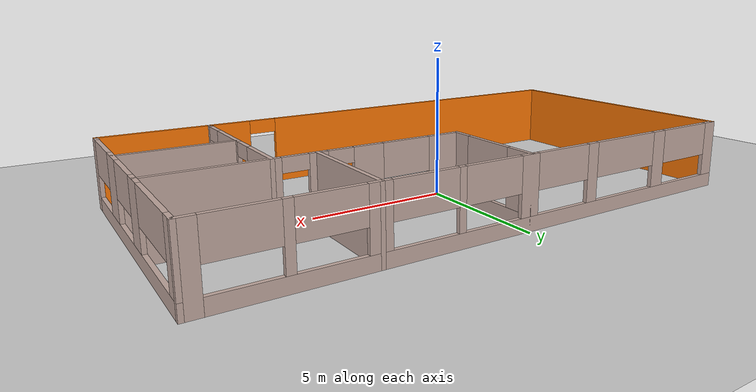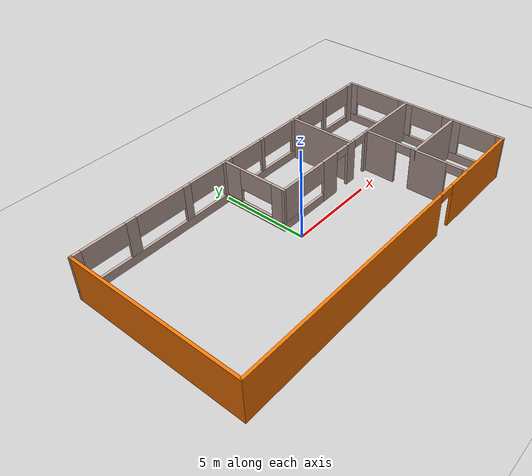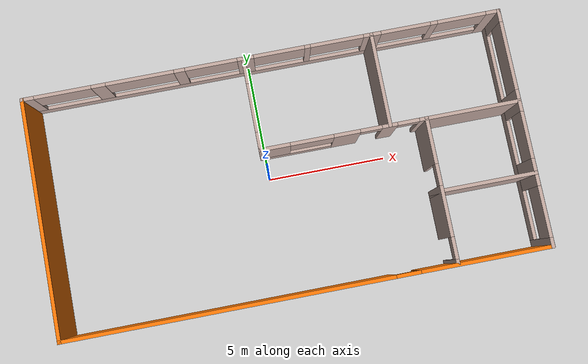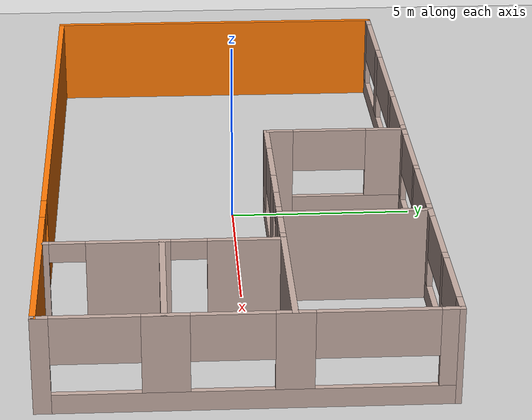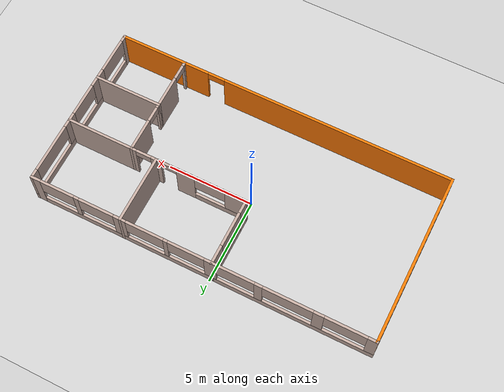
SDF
<sdf version="1.6">
 <world name="default">
  <model name="ground_plane">
   <static>1</static>
   <link name="link">
    <collision name="collision">
     <geometry><plane><normal>0 0 1</normal><size>100 100</size></plane></geometry>
     <surface><friction><ode><mu>100</mu><mu2>50</mu2></ode></friction></surface>
    </collision>
    <visual name="visual">
     <cast_shadows>0</cast_shadows>
     <geometry><plane><normal>0 0 1</normal><size>100 100</size></plane></geometry>
     <material>
      <script><uri>file://media/materials/scripts/gazebo.material</uri><name>Gazebo/Grey</name></script>
     </material>
    </visual>
   </link>
  </model>
  <model name="Building">
   <pose>0.620305 -0.11182 0 0 -0 0</pose>
   <link name="Wall_15">
    <pose>0 -4.925 0 0 -0 0</pose>
    <visual name="Wall_15_Visual_0">
     <pose>-3.2125 0 1.25 0 -0 0</pose>
     <geometry><box><size>13.575 0.15 2.5</size></box></geometry>
     <material>
      <script><uri>file://media/materials/scripts/gazebo.material</uri><name>Gazebo/Grey</name></script>
      <ambient>0.996078 0.47451 0.0196078 1</ambient>
     </material>
     <meta><layer>0</layer></meta>
    </visual>
    <collision name="Wall_15_Collision_0">
     <geometry><box><size>13.575 0.15 2.5</size></box></geometry>
     <pose>-3.2125 0 1.25 0 -0 0</pose>
    </collision>
    <visual name="Wall_15_Visual_1">
     <pose>7.2875 0 1.25 0 -0 0</pose>
     <geometry><box><size>5.425 0.15 2.5</size></box></geometry>
     <material>
      <script><uri>file://media/materials/scripts/gazebo.material</uri><name>Gazebo/Grey</name></script>
      <ambient>0.996078 0.47451 0.0196078 1</ambient>
     </material>
     <meta><layer>0</layer></meta>
    </visual>
    <collision name="Wall_15_Collision_1">
     <geometry><box><size>5.425 0.15 2.5</size></box></geometry>
     <pose>7.2875 0 1.25 0 -0 0</pose>
    </collision>
    <visual name="Wall_15_Visual_2">
     <pose>4.075 0 2.25 0 -0 0</pose>
     <geometry><box><size>1 0.15 0.5</size></box></geometry>
     <material>
      <script><uri>file://media/materials/scripts/gazebo.material</uri><name>Gazebo/Grey</name></script>
      <ambient>0.996078 0.47451 0.0196078 1</ambient>
     </material>
     <meta><layer>0</layer></meta>
    </visual>
    <collision name="Wall_15_Collision_2">
     <geometry><box><size>1 0.15 0.5</size></box></geometry>
     <pose>4.075 0 2.25 0 -0 0</pose>
    </collision>
   </link>
   <link name="Wall_18">
    <pose>9.925 0 0 0 -0 1.5708</pose>
    <visual name="Wall_18_Visual_0">
     <pose>-4.78258 0 1.25 0 -0 0</pose>
     <geometry><box><size>0.434845 0.15 2.5</size></box></geometry>
     <material>
      <script><uri>file://media/materials/scripts/gazebo.material</uri><name>Gazebo/Grey</name></script>
      <ambient>0.760784 0.662745 0.627451 1</ambient>
     </material>
     <meta><layer>0</layer></meta>
    </visual>
    <collision name="Wall_18_Collision_0">
     <geometry><box><size>0.434845 0.15 2.5</size></box></geometry>
     <pose>-4.78258 0 1.25 0 -0 0</pose>
    </collision>
    <visual name="Wall_18_Visual_1">
     <pose>0.217422 0 0.25 0 -0 0</pose>
     <geometry><box><size>9.56516 0.15 0.5</size></box></geometry>
     <material>
      <script><uri>file://media/materials/scripts/gazebo.material</uri><name>Gazebo/Grey</name></script>
      <ambient>0.760784 0.662745 0.627451 1</ambient>
     </material>
     <meta><layer>0</layer></meta>
    </visual>
    <collision name="Wall_18_Collision_1">
     <geometry><box><size>9.56516 0.15 0.5</size></box></geometry>
     <pose>0.217422 0 0.25 0 -0 0</pose>
    </collision>
    <visual name="Wall_18_Visual_2">
     <pose>-1.89711 0 1.5 0 -0 0</pose>
     <geometry><box><size>1.13074 0.15 2</size></box></geometry>
     <material>
      <script><uri>file://media/materials/scripts/gazebo.material</uri><name>Gazebo/Grey</name></script>
      <ambient>0.760784 0.662745 0.627451 1</ambient>
     </material>
     <meta><layer>0</layer></meta>
    </visual>
    <collision name="Wall_18_Collision_2">
     <geometry><box><size>1.13074 0.15 2</size></box></geometry>
     <pose>-1.89711 0 1.5 0 -0 0</pose>
    </collision>
    <visual name="Wall_18_Visual_3">
     <pose>1.09205 0 1.5 0 -0 0</pose>
     <geometry><box><size>0.921385 0.15 2</size></box></geometry>
     <material>
      <script><uri>file://media/materials/scripts/gazebo.material</uri><name>Gazebo/Grey</name></script>
      <ambient>0.760784 0.662745 0.627451 1</ambient>
     </material>
     <meta><layer>0</layer></meta>
    </visual>
    <collision name="Wall_18_Collision_3">
     <geometry><box><size>0.921385 0.15 2</size></box></geometry>
     <pose>1.09205 0 1.5 0 -0 0</pose>
    </collision>
    <visual name="Wall_18_Visual_4">
     <pose>4.72316 0 1.5 0 -0 0</pose>
     <geometry><box><size>0.553684 0.15 2</size></box></geometry>
     <material>
      <script><uri>file://media/materials/scripts/gazebo.material</uri><name>Gazebo/Grey</name></script>
      <ambient>0.760784 0.662745 0.627451 1</ambient>
     </material>
     <meta><layer>0</layer></meta>
    </visual>
    <collision name="Wall_18_Collision_4">
     <geometry><box><size>0.553684 0.15 2</size></box></geometry>
     <pose>4.72316 0 1.5 0 -0 0</pose>
    </collision>
    <visual name="Wall_18_Visual_5">
     <pose>-3.51382 0 1.9 0 -0 0</pose>
     <geometry><box><size>2.10267 0.15 1.2</size></box></geometry>
     <material>
      <script><uri>file://media/materials/scripts/gazebo.material</uri><name>Gazebo/Grey</name></script>
      <ambient>0.760784 0.662745 0.627451 1</ambient>
     </material>
     <meta><layer>0</layer></meta>
    </visual>
    <collision name="Wall_18_Collision_5">
     <geometry><box><size>2.10267 0.15 1.2</size></box></geometry>
     <pose>-3.51382 0 1.9 0 -0 0</pose>
    </collision>
    <visual name="Wall_18_Visual_6">
     <pose>-0.350194 0 1.9 0 -0 0</pose>
     <geometry><box><size>1.9631 0.15 1.2</size></box></geometry>
     <material>
      <script><uri>file://media/materials/scripts/gazebo.material</uri><name>Gazebo/Grey</name></script>
      <ambient>0.760784 0.662745 0.627451 1</ambient>
     </material>
     <meta><layer>0</layer></meta>
    </visual>
    <collision name="Wall_18_Collision_6">
     <geometry><box><size>1.9631 0.15 1.2</size></box></geometry>
     <pose>-0.350194 0 1.9 0 -0 0</pose>
    </collision>
    <visual name="Wall_18_Visual_7">
     <pose>2.99953 0 1.9 0 -0 0</pose>
     <geometry><box><size>2.89358 0.15 1.2</size></box></geometry>
     <material>
      <script><uri>file://media/materials/scripts/gazebo.material</uri><name>Gazebo/Grey</name></script>
      <ambient>0.760784 0.662745 0.627451 1</ambient>
     </material>
     <meta><layer>0</layer></meta>
    </visual>
    <collision name="Wall_18_Collision_7">
     <geometry><box><size>2.89358 0.15 1.2</size></box></geometry>
     <pose>2.99953 0 1.9 0 -0 0</pose>
    </collision>
   </link>
   <link name="Wall_19">
    <pose>0 4.925 0 0 -0 3.14159</pose>
    <visual name="Wall_19_Visual_0">
     <pose>-9.69596 0 1.25 0 -0 0</pose>
     <geometry><box><size>0.608075 0.15 2.5</size></box></geometry>
     <material>
      <script><uri>file://media/materials/scripts/gazebo.material</uri><name>Gazebo/Grey</name></script>
      <ambient>0.760784 0.662745 0.627451 1</ambient>
     </material>
     <meta><layer>0</layer></meta>
    </visual>
    <collision name="Wall_19_Collision_0">
     <geometry><box><size>0.608075 0.15 2.5</size></box></geometry>
     <pose>-9.69596 0 1.25 0 -0 0</pose>
    </collision>
    <visual name="Wall_19_Visual_1">
     <pose>0.304038 0 0.25 0 -0 0</pose>
     <geometry><box><size>19.3919 0.15 0.5</size></box></geometry>
     <material>
      <script><uri>file://media/materials/scripts/gazebo.material</uri><name>Gazebo/Grey</name></script>
      <ambient>0.760784 0.662745 0.627451 1</ambient>
     </material>
     <meta><layer>0</layer></meta>
    </visual>
    <collision name="Wall_19_Collision_1">
     <geometry><box><size>19.3919 0.15 0.5</size></box></geometry>
     <pose>0.304038 0 0.25 0 -0 0</pose>
    </collision>
    <visual name="Wall_19_Visual_2">
     <pose>-7.21239 0 1.5 0 -0 0</pose>
     <geometry><box><size>0.293312 0.15 2</size></box></geometry>
     <material>
      <script><uri>file://media/materials/scripts/gazebo.material</uri><name>Gazebo/Grey</name></script>
      <ambient>0.760784 0.662745 0.627451 1</ambient>
     </material>
     <meta><layer>0</layer></meta>
    </visual>
    <collision name="Wall_19_Collision_2">
     <geometry><box><size>0.293312 0.15 2</size></box></geometry>
     <pose>-7.21239 0 1.5 0 -0 0</pose>
    </collision>
    <visual name="Wall_19_Visual_3">
     <pose>-4.61868 0 1.5 0 -0 0</pose>
     <geometry><box><size>0.735289 0.15 2</size></box></geometry>
     <material>
      <script><uri>file://media/materials/scripts/gazebo.material</uri><name>Gazebo/Grey</name></script>
      <ambient>0.760784 0.662745 0.627451 1</ambient>
     </material>
     <meta><layer>0</layer></meta>
    </visual>
    <collision name="Wall_19_Collision_3">
     <geometry><box><size>0.735289 0.15 2</size></box></geometry>
     <pose>-4.61868 0 1.5 0 -0 0</pose>
    </collision>
    <visual name="Wall_19_Visual_4">
     <pose>-1.90866 0 1.5 0 -0 0</pose>
     <geometry><box><size>0.246788 0.15 2</size></box></geometry>
     <material>
      <script><uri>file://media/materials/scripts/gazebo.material</uri><name>Gazebo/Grey</name></script>
      <ambient>0.760784 0.662745 0.627451 1</ambient>
     </material>
     <meta><layer>0</layer></meta>
    </visual>
    <collision name="Wall_19_Collision_4">
     <geometry><box><size>0.246788 0.15 2</size></box></geometry>
     <pose>-1.90866 0 1.5 0 -0 0</pose>
    </collision>
    <visual name="Wall_19_Visual_5">
     <pose>0.68505 0 1.5 0 -0 0</pose>
     <geometry><box><size>0.688765 0.15 2</size></box></geometry>
     <material>
      <script><uri>file://media/materials/scripts/gazebo.material</uri><name>Gazebo/Grey</name></script>
      <ambient>0.760784 0.662745 0.627451 1</ambient>
     </material>
     <meta><layer>0</layer></meta>
    </visual>
    <collision name="Wall_19_Collision_5">
     <geometry><box><size>0.688765 0.15 2</size></box></geometry>
     <pose>0.68505 0 1.5 0 -0 0</pose>
    </collision>
    <visual name="Wall_19_Visual_6">
     <pose>3.42996 0 1.5 0 -0 0</pose>
     <geometry><box><size>0.456146 0.15 2</size></box></geometry>
     <material>
      <script><uri>file://media/materials/scripts/gazebo.material</uri><name>Gazebo/Grey</name></script>
      <ambient>0.760784 0.662745 0.627451 1</ambient>
     </material>
     <meta><layer>0</layer></meta>
    </visual>
    <collision name="Wall_19_Collision_6">
     <geometry><box><size>0.456146 0.15 2</size></box></geometry>
     <pose>3.42996 0 1.5 0 -0 0</pose>
    </collision>
    <visual name="Wall_19_Visual_7">
     <pose>6.77968 0 1.5 0 -0 0</pose>
     <geometry><box><size>0.595718 0.15 2</size></box></geometry>
     <material>
      <script><uri>file://media/materials/scripts/gazebo.material</uri><name>Gazebo/Grey</name></script>
      <ambient>0.760784 0.662745 0.627451 1</ambient>
     </material>
     <meta><layer>0</layer></meta>
    </visual>
    <collision name="Wall_19_Collision_7">
     <geometry><box><size>0.595718 0.15 2</size></box></geometry>
     <pose>6.77968 0 1.5 0 -0 0</pose>
    </collision>
    <visual name="Wall_19_Visual_8">
     <pose>9.71805 0 1.5 0 -0 0</pose>
     <geometry><box><size>0.563908 0.15 2</size></box></geometry>
     <material>
      <script><uri>file://media/materials/scripts/gazebo.material</uri><name>Gazebo/Grey</name></script>
      <ambient>0.760784 0.662745 0.627451 1</ambient>
     </material>
     <meta><layer>0</layer></meta>
    </visual>
    <collision name="Wall_19_Collision_8">
     <geometry><box><size>0.563908 0.15 2</size></box></geometry>
     <pose>9.71805 0 1.5 0 -0 0</pose>
    </collision>
    <visual name="Wall_19_Visual_9">
     <pose>-8.37548 0 1.9 0 -0 0</pose>
     <geometry><box><size>2.03288 0.15 1.2</size></box></geometry>
     <material>
      <script><uri>file://media/materials/scripts/gazebo.material</uri><name>Gazebo/Grey</name></script>
      <ambient>0.760784 0.662745 0.627451 1</ambient>
     </material>
     <meta><layer>0</layer></meta>
    </visual>
    <collision name="Wall_19_Collision_9">
     <geometry><box><size>2.03288 0.15 1.2</size></box></geometry>
     <pose>-8.37548 0 1.9 0 -0 0</pose>
    </collision>
    <visual name="Wall_19_Visual_10">
     <pose>-6.02602 0 1.9 0 -0 0</pose>
     <geometry><box><size>2.07941 0.15 1.2</size></box></geometry>
     <material>
      <script><uri>file://media/materials/scripts/gazebo.material</uri><name>Gazebo/Grey</name></script>
      <ambient>0.760784 0.662745 0.627451 1</ambient>
     </material>
     <meta><layer>0</layer></meta>
    </visual>
    <collision name="Wall_19_Collision_10">
     <geometry><box><size>2.07941 0.15 1.2</size></box></geometry>
     <pose>-6.02602 0 1.9 0 -0 0</pose>
    </collision>
    <visual name="Wall_19_Visual_11">
     <pose>-3.14154 0 1.9 0 -0 0</pose>
     <geometry><box><size>2.21898 0.15 1.2</size></box></geometry>
     <material>
      <script><uri>file://media/materials/scripts/gazebo.material</uri><name>Gazebo/Grey</name></script>
      <ambient>0.760784 0.662745 0.627451 1</ambient>
     </material>
     <meta><layer>0</layer></meta>
    </visual>
    <collision name="Wall_19_Collision_11">
     <geometry><box><size>2.21898 0.15 1.2</size></box></geometry>
     <pose>-3.14154 0 1.9 0 -0 0</pose>
    </collision>
    <visual name="Wall_19_Visual_12">
     <pose>-0.722299 0 1.9 0 -0 0</pose>
     <geometry><box><size>2.12593 0.15 1.2</size></box></geometry>
     <material>
      <script><uri>file://media/materials/scripts/gazebo.material</uri><name>Gazebo/Grey</name></script>
      <ambient>0.760784 0.662745 0.627451 1</ambient>
     </material>
     <meta><layer>0</layer></meta>
    </visual>
    <collision name="Wall_19_Collision_12">
     <geometry><box><size>2.12593 0.15 1.2</size></box></geometry>
     <pose>-0.722299 0 1.9 0 -0 0</pose>
    </collision>
    <visual name="Wall_19_Visual_13">
     <pose>2.11566 0 1.9 0 -0 0</pose>
     <geometry><box><size>2.17245 0.15 1.2</size></box></geometry>
     <material>
      <script><uri>file://media/materials/scripts/gazebo.material</uri><name>Gazebo/Grey</name></script>
      <ambient>0.760784 0.662745 0.627451 1</ambient>
     </material>
     <meta><layer>0</layer></meta>
    </visual>
    <collision name="Wall_19_Collision_13">
     <geometry><box><size>2.17245 0.15 1.2</size></box></geometry>
     <pose>2.11566 0 1.9 0 -0 0</pose>
    </collision>
    <visual name="Wall_19_Visual_14">
     <pose>5.06993 0 1.9 0 -0 0</pose>
     <geometry><box><size>2.82379 0.15 1.2</size></box></geometry>
     <material>
      <script><uri>file://media/materials/scripts/gazebo.material</uri><name>Gazebo/Grey</name></script>
      <ambient>0.760784 0.662745 0.627451 1</ambient>
     </material>
     <meta><layer>0</layer></meta>
    </visual>
    <collision name="Wall_19_Collision_14">
     <geometry><box><size>2.82379 0.15 1.2</size></box></geometry>
     <pose>5.06993 0 1.9 0 -0 0</pose>
    </collision>
    <visual name="Wall_19_Visual_15">
     <pose>8.25682 0 1.9 0 -0 0</pose>
     <geometry><box><size>2.35855 0.15 1.2</size></box></geometry>
     <material>
      <script><uri>file://media/materials/scripts/gazebo.material</uri><name>Gazebo/Grey</name></script>
      <ambient>0.760784 0.662745 0.627451 1</ambient>
     </material>
     <meta><layer>0</layer></meta>
    </visual>
    <collision name="Wall_19_Collision_15">
     <geometry><box><size>2.35855 0.15 1.2</size></box></geometry>
     <pose>8.25682 0 1.9 0 -0 0</pose>
    </collision>
   </link>
   <link name="Wall_20">
    <collision name="Wall_20_Collision">
     <geometry><box><size>10 0.15 2.5</size></box></geometry>
     <pose>0 0 1.25 0 -0 0</pose>
    </collision>
    <visual name="Wall_20_Visual">
     <pose>0 0 1.25 0 -0 0</pose>
     <geometry><box><size>10 0.15 2.5</size></box></geometry>
     <material>
      <script><uri>file://media/materials/scripts/gazebo.material</uri><name>Gazebo/Grey</name></script>
      <ambient>0.996078 0.47451 0.0196078 1</ambient>
     </material>
     <meta><layer>0</layer></meta>
    </visual>
    <pose>-9.925 0 0 0 0 -1.5708</pose>
   </link>
   <link name="Wall_37">
    <pose>6.075 -1.925 0 0 -0 1.5708</pose>
    <visual name="Wall_37_Visual_0">
     <pose>-2.92581 0 1.25 0 -0 0</pose>
     <geometry><box><size>0.298377 0.15 2.5</size></box></geometry>
     <material>
      <script><uri>file://media/materials/scripts/gazebo.material</uri><name>Gazebo/Grey</name></script>
      <ambient>0.760784 0.662745 0.627451 1</ambient>
     </material>
     <meta><layer>0</layer></meta>
    </visual>
    <collision name="Wall_37_Collision_0">
     <geometry><box><size>0.298377 0.15 2.5</size></box></geometry>
     <pose>-2.92581 0 1.25 0 -0 0</pose>
    </collision>
    <visual name="Wall_37_Visual_1">
     <pose>-0.831526 0 1.25 0 -0 0</pose>
     <geometry><box><size>2.0902 0.15 2.5</size></box></geometry>
     <material>
      <script><uri>file://media/materials/scripts/gazebo.material</uri><name>Gazebo/Grey</name></script>
      <ambient>0.760784 0.662745 0.627451 1</ambient>
     </material>
     <meta><layer>0</layer></meta>
    </visual>
    <collision name="Wall_37_Collision_1">
     <geometry><box><size>2.0902 0.15 2.5</size></box></geometry>
     <pose>-0.831526 0 1.25 0 -0 0</pose>
    </collision>
    <visual name="Wall_37_Visual_2">
     <pose>2.09429 0 1.25 0 -0 0</pose>
     <geometry><box><size>1.96143 0.15 2.5</size></box></geometry>
     <material>
      <script><uri>file://media/materials/scripts/gazebo.material</uri><name>Gazebo/Grey</name></script>
      <ambient>0.760784 0.662745 0.627451 1</ambient>
     </material>
     <meta><layer>0</layer></meta>
    </visual>
    <collision name="Wall_37_Collision_2">
     <geometry><box><size>1.96143 0.15 2.5</size></box></geometry>
     <pose>2.09429 0 1.25 0 -0 0</pose>
    </collision>
    <visual name="Wall_37_Visual_3">
     <pose>-2.32662 0 2.25 0 -0 0</pose>
     <geometry><box><size>0.9 0.15 0.5</size></box></geometry>
     <material>
      <script><uri>file://media/materials/scripts/gazebo.material</uri><name>Gazebo/Grey</name></script>
      <ambient>0.760784 0.662745 0.627451 1</ambient>
     </material>
     <meta><layer>0</layer></meta>
    </visual>
    <collision name="Wall_37_Collision_3">
     <geometry><box><size>0.9 0.15 0.5</size></box></geometry>
     <pose>-2.32662 0 2.25 0 -0 0</pose>
    </collision>
    <visual name="Wall_37_Visual_4">
     <pose>0.663572 0 2.25 0 -0 0</pose>
     <geometry><box><size>0.9 0.15 0.5</size></box></geometry>
     <material>
      <script><uri>file://media/materials/scripts/gazebo.material</uri><name>Gazebo/Grey</name></script>
      <ambient>0.760784 0.662745 0.627451 1</ambient>
     </material>
     <meta><layer>0</layer></meta>
    </visual>
    <collision name="Wall_37_Collision_4">
     <geometry><box><size>0.9 0.15 0.5</size></box></geometry>
     <pose>0.663572 0 2.25 0 -0 0</pose>
    </collision>
   </link>
   <link name="Wall_39">
    <collision name="Wall_39_Collision">
     <geometry><box><size>4 0.15 2.5</size></box></geometry>
     <pose>0 0 1.25 0 -0 0</pose>
    </collision>
    <visual name="Wall_39_Visual">
     <pose>0 0 1.25 0 -0 0</pose>
     <geometry><box><size>4 0.15 2.5</size></box></geometry>
     <material>
      <script><uri>file://media/materials/scripts/gazebo.material</uri><name>Gazebo/Grey</name></script>
      <ambient>0.760784 0.662745 0.627451 1</ambient>
     </material>
     <meta><layer>0</layer></meta>
    </visual>
    <pose>8 -1.925 0 0 -0 0</pose>
   </link>
   <link name="Wall_41">
    <collision name="Wall_41_Collision">
     <geometry><box><size>3.998 0.15 2.5</size></box></geometry>
     <pose>0 0 1.25 0 -0 0</pose>
    </collision>
    <visual name="Wall_41_Visual">
     <pose>0 0 1.25 0 -0 0</pose>
     <geometry><box><size>3.998 0.15 2.5</size></box></geometry>
     <material>
      <script><uri>file://media/materials/scripts/gazebo.material</uri><name>Gazebo/Grey</name></script>
      <ambient>0.760784 0.662745 0.627451 1</ambient>
     </material>
     <meta><layer>0</layer></meta>
    </visual>
    <pose>7.999 1.075 0 0 -0 0</pose>
   </link>
   <link name="Wall_43">
    <pose>2.65 1.075 0 0 -0 3.14159</pose>
    <visual name="Wall_43_Visual_0">
     <pose>-3.31508 0 1.25 0 -0 0</pose>
     <geometry><box><size>0.36983 0.15 2.5</size></box></geometry>
     <material>
      <script><uri>file://media/materials/scripts/gazebo.material</uri><name>Gazebo/Grey</name></script>
      <ambient>0.760784 0.662745 0.627451 1</ambient>
     </material>
     <meta><layer>0</layer></meta>
    </visual>
    <collision name="Wall_43_Collision_0">
     <geometry><box><size>0.36983 0.15 2.5</size></box></geometry>
     <pose>-3.31508 0 1.25 0 -0 0</pose>
    </collision>
    <visual name="Wall_43_Visual_1">
     <pose>-1.91151 0 1.25 0 -0 0</pose>
     <geometry><box><size>0.637312 0.15 2.5</size></box></geometry>
     <material>
      <script><uri>file://media/materials/scripts/gazebo.material</uri><name>Gazebo/Grey</name></script>
      <ambient>0.760784 0.662745 0.627451 1</ambient>
     </material>
     <meta><layer>0</layer></meta>
    </visual>
    <collision name="Wall_43_Collision_1">
     <geometry><box><size>0.637312 0.15 2.5</size></box></geometry>
     <pose>-1.91151 0 1.25 0 -0 0</pose>
    </collision>
    <visual name="Wall_43_Visual_2">
     <pose>-0.146681 0 1.25 0 -0 0</pose>
     <geometry><box><size>1.09235 0.15 2.5</size></box></geometry>
     <material>
      <script><uri>file://media/materials/scripts/gazebo.material</uri><name>Gazebo/Grey</name></script>
      <ambient>0.760784 0.662745 0.627451 1</ambient>
     </material>
     <meta><layer>0</layer></meta>
    </visual>
    <collision name="Wall_43_Collision_2">
     <geometry><box><size>1.09235 0.15 2.5</size></box></geometry>
     <pose>-0.146681 0 1.25 0 -0 0</pose>
    </collision>
    <visual name="Wall_43_Visual_3">
     <pose>1.94975 0 0.25 0 -0 0</pose>
     <geometry><box><size>3.1005 0.15 0.5</size></box></geometry>
     <material>
      <script><uri>file://media/materials/scripts/gazebo.material</uri><name>Gazebo/Grey</name></script>
      <ambient>0.760784 0.662745 0.627451 1</ambient>
     </material>
     <meta><layer>0</layer></meta>
    </visual>
    <collision name="Wall_43_Collision_3">
     <geometry><box><size>3.1005 0.15 0.5</size></box></geometry>
     <pose>1.94975 0 0.25 0 -0 0</pose>
    </collision>
    <visual name="Wall_43_Visual_4">
     <pose>2.84988 0 1.5 0 -0 0</pose>
     <geometry><box><size>1.30024 0.15 2</size></box></geometry>
     <material>
      <script><uri>file://media/materials/scripts/gazebo.material</uri><name>Gazebo/Grey</name></script>
      <ambient>0.760784 0.662745 0.627451 1</ambient>
     </material>
     <meta><layer>0</layer></meta>
    </visual>
    <collision name="Wall_43_Collision_4">
     <geometry><box><size>1.30024 0.15 2</size></box></geometry>
     <pose>2.84988 0 1.5 0 -0 0</pose>
    </collision>
    <visual name="Wall_43_Visual_5">
     <pose>1.29963 0 1.9 0 -0 0</pose>
     <geometry><box><size>1.80026 0.15 1.2</size></box></geometry>
     <material>
      <script><uri>file://media/materials/scripts/gazebo.material</uri><name>Gazebo/Grey</name></script>
      <ambient>0.760784 0.662745 0.627451 1</ambient>
     </material>
     <meta><layer>0</layer></meta>
    </visual>
    <collision name="Wall_43_Collision_5">
     <geometry><box><size>1.80026 0.15 1.2</size></box></geometry>
     <pose>1.29963 0 1.9 0 -0 0</pose>
    </collision>
    <visual name="Wall_43_Visual_6">
     <pose>-2.68017 0 2.25 0 -0 0</pose>
     <geometry><box><size>0.9 0.15 0.5</size></box></geometry>
     <material>
      <script><uri>file://media/materials/scripts/gazebo.material</uri><name>Gazebo/Grey</name></script>
      <ambient>0.760784 0.662745 0.627451 1</ambient>
     </material>
     <meta><layer>0</layer></meta>
    </visual>
    <collision name="Wall_43_Collision_6">
     <geometry><box><size>0.9 0.15 0.5</size></box></geometry>
     <pose>-2.68017 0 2.25 0 -0 0</pose>
    </collision>
    <visual name="Wall_43_Visual_7">
     <pose>-1.14286 0 2.25 0 -0 0</pose>
     <geometry><box><size>0.9 0.15 0.5</size></box></geometry>
     <material>
      <script><uri>file://media/materials/scripts/gazebo.material</uri><name>Gazebo/Grey</name></script>
      <ambient>0.760784 0.662745 0.627451 1</ambient>
     </material>
     <meta><layer>0</layer></meta>
    </visual>
    <collision name="Wall_43_Collision_7">
     <geometry><box><size>0.9 0.15 0.5</size></box></geometry>
     <pose>-1.14286 0 2.25 0 -0 0</pose>
    </collision>
   </link>
   <link name="Wall_45">
    <pose>-0.775 3 0 0 -0 1.5708</pose>
    <visual name="Wall_45_Visual_0">
     <pose>-1.58987 0 1.25 0 -0 0</pose>
     <geometry><box><size>0.820252 0.15 2.5</size></box></geometry>
     <material>
      <script><uri>file://media/materials/scripts/gazebo.material</uri><name>Gazebo/Grey</name></script>
      <ambient>0.760784 0.662745 0.627451 1</ambient>
     </material>
     <meta><layer>0</layer></meta>
    </visual>
    <collision name="Wall_45_Collision_0">
     <geometry><box><size>0.820252 0.15 2.5</size></box></geometry>
     <pose>-1.58987 0 1.25 0 -0 0</pose>
    </collision>
    <visual name="Wall_45_Visual_1">
     <pose>0.410126 0 0.25 0 -0 0</pose>
     <geometry><box><size>3.17975 0.15 0.5</size></box></geometry>
     <material>
      <script><uri>file://media/materials/scripts/gazebo.material</uri><name>Gazebo/Grey</name></script>
      <ambient>0.760784 0.662745 0.627451 1</ambient>
     </material>
     <meta><layer>0</layer></meta>
    </visual>
    <collision name="Wall_45_Collision_1">
     <geometry><box><size>3.17975 0.15 0.5</size></box></geometry>
     <pose>0.410126 0 0.25 0 -0 0</pose>
    </collision>
    <visual name="Wall_45_Visual_2">
     <pose>1.42657 0 1.5 0 -0 0</pose>
     <geometry><box><size>1.14686 0.15 2</size></box></geometry>
     <material>
      <script><uri>file://media/materials/scripts/gazebo.material</uri><name>Gazebo/Grey</name></script>
      <ambient>0.760784 0.662745 0.627451 1</ambient>
     </material>
     <meta><layer>0</layer></meta>
    </visual>
    <collision name="Wall_45_Collision_2">
     <geometry><box><size>1.14686 0.15 2</size></box></geometry>
     <pose>1.42657 0 1.5 0 -0 0</pose>
    </collision>
    <visual name="Wall_45_Visual_3">
     <pose>-0.163306 0 1.9 0 -0 0</pose>
     <geometry><box><size>2.03288 0.15 1.2</size></box></geometry>
     <material>
      <script><uri>file://media/materials/scripts/gazebo.material</uri><name>Gazebo/Grey</name></script>
      <ambient>0.760784 0.662745 0.627451 1</ambient>
     </material>
     <meta><layer>0</layer></meta>
    </visual>
    <collision name="Wall_45_Collision_3">
     <geometry><box><size>2.03288 0.15 1.2</size></box></geometry>
     <pose>-0.163306 0 1.9 0 -0 0</pose>
    </collision>
   </link>
   <link name="Wall_48">
    <collision name="Wall_48_Collision">
     <geometry><box><size>4 0.15 2.5</size></box></geometry>
     <pose>0 0 1.25 0 -0 0</pose>
    </collision>
    <visual name="Wall_48_Visual">
     <pose>0 0 1.25 0 -0 0</pose>
     <geometry><box><size>4 0.15 2.5</size></box></geometry>
     <material>
      <script><uri>file://media/materials/scripts/gazebo.material</uri><name>Gazebo/Grey</name></script>
      <ambient>0.760784 0.662745 0.627451 1</ambient>
     </material>
     <meta><layer>0</layer></meta>
    </visual>
    <pose>4.575 3 0 0 -0 1.5708</pose>
   </link>
   <static>1</static>
  </model>
 </world>
</sdf>
